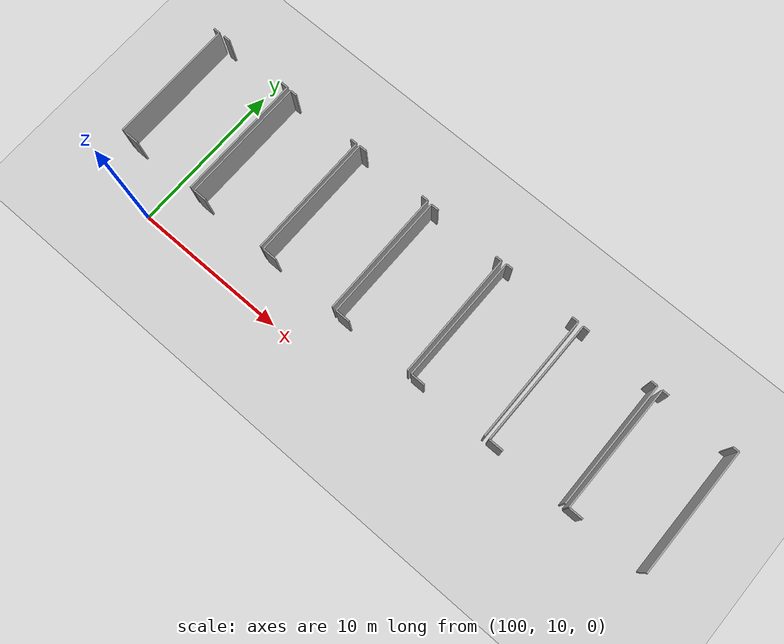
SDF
<sdf version="1.6">
 <world name="default">
  <model name="ground_plane">
   <static>1</static>
   <link name="link">
    <collision name="collision">
     <geometry><plane><normal>0 0 1</normal><size>100 100</size></plane></geometry>
     <surface><friction><ode><mu>100</mu><mu2>50</mu2></ode></friction></surface>
    </collision>
    <visual name="visual">
     <cast_shadows>0</cast_shadows>
     <geometry><plane><normal>0 0 1</normal><size>100 100</size></plane></geometry>
     <material>
      <script><uri>file://media/materials/scripts/gazebo.material</uri><name>Gazebo/Grey</name></script>
     </material>
    </visual>
   </link>
  </model>
  <model name="50037764_PLAN2">
   <static>1</static>
   <link name="Wall_492">
    <collision name="Wall_492_Collision">
     <geometry><box><size>0.440540952768 0.1 2.5</size></box></geometry>
     <pose>0.220270476384 0 1.25 0 0 0</pose>
    </collision>
    <visual name="Wall_492_Visual">
     <pose>0.220270476384 0 1.25 0 0 0</pose>
     <geometry><box><size>0.440540952768 0.1 2.5</size></box></geometry>
     <material>
      <script><uri>file://media/materials/scripts/gazebo.material</uri><name>Gazebo/Grey</name></script>
      <ambient>1 1 1 1</ambient>
     </material>
    </visual>
    <pose>231.542478011 -0.509939498704 0 0 0 0.0</pose>
   </link>
   <link name="Wall_493">
    <collision name="Wall_493_Collision">
     <geometry><box><size>8.1518296751 0.1 2.5</size></box></geometry>
     <pose>4.07591483755 0 1.25 0 0 0</pose>
    </collision>
    <visual name="Wall_493_Visual">
     <pose>4.07591483755 0 1.25 0 0 0</pose>
     <geometry><box><size>8.1518296751 0.1 2.5</size></box></geometry>
     <material>
      <script><uri>file://media/materials/scripts/gazebo.material</uri><name>Gazebo/Grey</name></script>
      <ambient>1 1 1 1</ambient>
     </material>
    </visual>
    <pose>231.983018964 -0.509939498704 0 0 0 -1.56671120386</pose>
   </link>
   <link name="Wall_494">
    <collision name="Wall_494_Collision">
     <geometry><box><size>0.87193044893 0.1 2.5</size></box></geometry>
     <pose>0.435965224465 0 1.25 0 0 0</pose>
    </collision>
    <visual name="Wall_494_Visual">
     <pose>0.435965224465 0 1.25 0 0 0</pose>
     <geometry><box><size>0.87193044893 0.1 2.5</size></box></geometry>
     <material>
      <script><uri>file://media/materials/scripts/gazebo.material</uri><name>Gazebo/Grey</name></script>
      <ambient>1 1 1 1</ambient>
     </material>
    </visual>
    <pose>233.188214958 -8.65743047435 0 0 0 3.14159265359</pose>
   </link>
   <link name="Wall_496">
    <collision name="Wall_496_Collision">
     <geometry><box><size>0.461131730134 0.1 2.5</size></box></geometry>
     <pose>0.230565865067 0 1.25 0 0 0</pose>
    </collision>
    <visual name="Wall_496_Visual">
     <pose>0.230565865067 0 1.25 0 0 0</pose>
     <geometry><box><size>0.461131730134 0.1 2.5</size></box></geometry>
     <material>
      <script><uri>file://media/materials/scripts/gazebo.material</uri><name>Gazebo/Grey</name></script>
      <ambient>1 1 1 1</ambient>
     </material>
    </visual>
    <pose>232.316284509 -0.49290762113 0 0 0 0.0</pose>
   </link>
   <link name="Wall_497">
    <collision name="Wall_497_Collision">
     <geometry><box><size>0.487569271442 0.1 2.5</size></box></geometry>
     <pose>0.243784635721 0 1.25 0 0 0</pose>
    </collision>
    <visual name="Wall_497_Visual">
     <pose>0.243784635721 0 1.25 0 0 0</pose>
     <geometry><box><size>0.487569271442 0.1 2.5</size></box></geometry>
     <material>
      <script><uri>file://media/materials/scripts/gazebo.material</uri><name>Gazebo/Grey</name></script>
      <ambient>1 1 1 1</ambient>
     </material>
    </visual>
    <pose>236.944887895 -0.49290762113 0 0 0 0.0</pose>
   </link>
   <link name="Wall_498">
    <collision name="Wall_498_Collision">
     <geometry><box><size>8.16452742802 0.1 2.5</size></box></geometry>
     <pose>4.08226371401 0 1.25 0 0 0</pose>
    </collision>
    <visual name="Wall_498_Visual">
     <pose>4.08226371401 0 1.25 0 0 0</pose>
     <geometry><box><size>8.16452742802 0.1 2.5</size></box></geometry>
     <material>
      <script><uri>file://media/materials/scripts/gazebo.material</uri><name>Gazebo/Grey</name></script>
      <ambient>1 1 1 1</ambient>
     </material>
    </visual>
    <pose>237.432457166 -0.49290762113 0 0 0 -1.56973771758</pose>
   </link>
   <link name="Wall_499">
    <collision name="Wall_499_Collision">
     <geometry><box><size>0.888962326504 0.1 2.5</size></box></geometry>
     <pose>0.444481163252 0 1.25 0 0 0</pose>
    </collision>
    <visual name="Wall_499_Visual">
     <pose>0.444481163252 0 1.25 0 0 0</pose>
     <geometry><box><size>0.888962326504 0.1 2.5</size></box></geometry>
     <material>
      <script><uri>file://media/materials/scripts/gazebo.material</uri><name>Gazebo/Grey</name></script>
      <ambient>1 1 1 1</ambient>
     </material>
    </visual>
    <pose>238.607910926 -8.64258477808 0 0 0 3.14159265359</pose>
   </link>
   <link name="Wall_500">
    <collision name="Wall_500_Collision">
     <geometry><box><size>8.1106563628 0.1 2.5</size></box></geometry>
     <pose>4.0553281814 0 1.25 0 0 0</pose>
    </collision>
    <visual name="Wall_500_Visual">
     <pose>4.0553281814 0 1.25 0 0 0</pose>
     <geometry><box><size>8.1106563628 0.1 2.5</size></box></geometry>
     <material>
      <script><uri>file://media/materials/scripts/gazebo.material</uri><name>Gazebo/Grey</name></script>
      <ambient>1 1 1 1</ambient>
     </material>
    </visual>
    <pose>237.718948599 -8.64258477808 0 0 0 1.57079632679</pose>
   </link>
   <link name="Wall_501">
    <collision name="Wall_501_Collision">
     <geometry><box><size>0.438761502873 0.1 2.5</size></box></geometry>
     <pose>0.219380751436 0 1.25 0 0 0</pose>
    </collision>
    <visual name="Wall_501_Visual">
     <pose>0.219380751436 0 1.25 0 0 0</pose>
     <geometry><box><size>0.438761502873 0.1 2.5</size></box></geometry>
     <material>
      <script><uri>file://media/materials/scripts/gazebo.material</uri><name>Gazebo/Grey</name></script>
      <ambient>1 1 1 1</ambient>
     </material>
    </visual>
    <pose>237.718948599 -0.531928415273 0 0 0 0.0</pose>
   </link>
   <link name="Wall_502">
    <collision name="Wall_502_Collision">
     <geometry><box><size>0.449183995119 0.1 2.5</size></box></geometry>
     <pose>0.22459199756 0 1.25 0 0 0</pose>
    </collision>
    <visual name="Wall_502_Visual">
     <pose>0.22459199756 0 1.25 0 0 0</pose>
     <geometry><box><size>0.449183995119 0.1 2.5</size></box></geometry>
     <material>
      <script><uri>file://media/materials/scripts/gazebo.material</uri><name>Gazebo/Grey</name></script>
      <ambient>1 1 1 1</ambient>
     </material>
    </visual>
    <pose>242.382632569 -0.531928415273 0 0 0 0.0</pose>
   </link>
   <link name="Wall_503">
    <collision name="Wall_503_Collision">
     <geometry><box><size>8.11065994816 0.1 2.5</size></box></geometry>
     <pose>4.05532997408 0 1.25 0 0 0</pose>
    </collision>
    <visual name="Wall_503_Visual">
     <pose>4.05532997408 0 1.25 0 0 0</pose>
     <geometry><box><size>8.11065994816 0.1 2.5</size></box></geometry>
     <material>
      <script><uri>file://media/materials/scripts/gazebo.material</uri><name>Gazebo/Grey</name></script>
      <ambient>1 1 1 1</ambient>
     </material>
    </visual>
    <pose>242.831816564 -0.531928415273 0 0 0 -1.56985605621</pose>
   </link>
   <link name="Wall_504">
    <collision name="Wall_504_Collision">
     <geometry><box><size>0.922771874523 0.1 2.5</size></box></geometry>
     <pose>0.461385937262 0 1.25 0 0 0</pose>
    </collision>
    <visual name="Wall_504_Visual">
     <pose>0.461385937262 0 1.25 0 0 0</pose>
     <geometry><box><size>0.922771874523 0.1 2.5</size></box></geometry>
     <material>
      <script><uri>file://media/materials/scripts/gazebo.material</uri><name>Gazebo/Grey</name></script>
      <ambient>1 1 1 1</ambient>
     </material>
    </visual>
    <pose>243.985154304 -8.64258477808 0 0 0 3.14159265359</pose>
   </link>
   <link name="Wall_505">
    <collision name="Wall_505_Collision">
     <geometry><box><size>8.13264527937 0.1 2.5</size></box></geometry>
     <pose>4.06632263969 0 1.25 0 0 0</pose>
    </collision>
    <visual name="Wall_505_Visual">
     <pose>4.06632263969 0 1.25 0 0 0</pose>
     <geometry><box><size>8.13264527937 0.1 2.5</size></box></geometry>
     <material>
      <script><uri>file://media/materials/scripts/gazebo.material</uri><name>Gazebo/Grey</name></script>
      <ambient>1 1 1 1</ambient>
     </material>
    </visual>
    <pose>243.062382429 -8.64258477808 0 0 0 1.57079632679</pose>
   </link>
   <link name="Wall_506">
    <collision name="Wall_506_Collision">
     <geometry><box><size>0.491382378362 0.1 2.5</size></box></geometry>
     <pose>0.245691189181 0 1.25 0 0 0</pose>
    </collision>
    <visual name="Wall_506_Visual">
     <pose>0.245691189181 0 1.25 0 0 0</pose>
     <geometry><box><size>0.491382378362 0.1 2.5</size></box></geometry>
     <material>
      <script><uri>file://media/materials/scripts/gazebo.material</uri><name>Gazebo/Grey</name></script>
      <ambient>1 1 1 1</ambient>
     </material>
    </visual>
    <pose>243.062382429 -0.509939498704 0 0 0 0.0</pose>
   </link>
   <link name="Wall_507">
    <collision name="Wall_507_Collision">
     <geometry><box><size>0.447404545223 0.1 2.5</size></box></geometry>
     <pose>0.223702272612 0 1.25 0 0 0</pose>
    </collision>
    <visual name="Wall_507_Visual">
     <pose>0.223702272612 0 1.25 0 0 0</pose>
     <geometry><box><size>0.447404545223 0.1 2.5</size></box></geometry>
     <material>
      <script><uri>file://media/materials/scripts/gazebo.material</uri><name>Gazebo/Grey</name></script>
      <ambient>1 1 1 1</ambient>
     </material>
    </visual>
    <pose>247.747928212 -0.509939498704 0 0 0 0.0</pose>
   </link>
   <link name="Wall_508">
    <collision name="Wall_508_Collision">
     <geometry><box><size>8.13266474683 0.1 2.5</size></box></geometry>
     <pose>4.06633237341 0 1.25 0 0 0</pose>
    </collision>
    <visual name="Wall_508_Visual">
     <pose>4.06633237341 0 1.25 0 0 0</pose>
     <geometry><box><size>8.13266474683 0.1 2.5</size></box></geometry>
     <material>
      <script><uri>file://media/materials/scripts/gazebo.material</uri><name>Gazebo/Grey</name></script>
      <ambient>1 1 1 1</ambient>
     </material>
    </visual>
    <pose>248.195332757 -0.509939498704 0 0 0 -1.56860829695</pose>
   </link>
   <link name="Wall_509">
    <collision name="Wall_509_Collision">
     <geometry><box><size>0.94565051604 0.1 2.5</size></box></geometry>
     <pose>0.47282525802 0 1.25 0 0 0</pose>
    </collision>
    <visual name="Wall_509_Visual">
     <pose>0.47282525802 0 1.25 0 0 0</pose>
     <geometry><box><size>0.94565051604 0.1 2.5</size></box></geometry>
     <material>
      <script><uri>file://media/materials/scripts/gazebo.material</uri><name>Gazebo/Grey</name></script>
      <ambient>1 1 1 1</ambient>
     </material>
    </visual>
    <pose>249.438405613 -8.64100869388 0 0 0 3.14159265359</pose>
   </link>
   <link name="Wall_510">
    <collision name="Wall_510_Collision">
     <geometry><box><size>8.08490518074 0.1 2.5</size></box></geometry>
     <pose>4.04245259037 0 1.25 0 0 0</pose>
    </collision>
    <visual name="Wall_510_Visual">
     <pose>4.04245259037 0 1.25 0 0 0</pose>
     <geometry><box><size>8.08490518074 0.1 2.5</size></box></geometry>
     <material>
      <script><uri>file://media/materials/scripts/gazebo.material</uri><name>Gazebo/Grey</name></script>
      <ambient>1 1 1 1</ambient>
     </material>
    </visual>
    <pose>248.492755097 -8.64100869388 0 0 0 1.57079632679</pose>
   </link>
   <link name="Wall_511">
    <collision name="Wall_511_Collision">
     <geometry><box><size>0.500788042097 0.1 2.5</size></box></geometry>
     <pose>0.250394021048 0 1.25 0 0 0</pose>
    </collision>
    <visual name="Wall_511_Visual">
     <pose>0.250394021048 0 1.25 0 0 0</pose>
     <geometry><box><size>0.500788042097 0.1 2.5</size></box></geometry>
     <material>
      <script><uri>file://media/materials/scripts/gazebo.material</uri><name>Gazebo/Grey</name></script>
      <ambient>1 1 1 1</ambient>
     </material>
    </visual>
    <pose>248.492755097 -0.556103513143 0 0 0 0.0</pose>
   </link>
   <link name="Wall_512">
    <collision name="Wall_512_Collision">
     <geometry><box><size>0.424525903706 0.1 2.5</size></box></geometry>
     <pose>0.212262951853 0 1.25 0 0 0</pose>
    </collision>
    <visual name="Wall_512_Visual">
     <pose>0.212262951853 0 1.25 0 0 0</pose>
     <geometry><box><size>0.424525903706 0.1 2.5</size></box></geometry>
     <material>
      <script><uri>file://media/materials/scripts/gazebo.material</uri><name>Gazebo/Grey</name></script>
      <ambient>1 1 1 1</ambient>
     </material>
    </visual>
    <pose>253.190502822 -0.556103513143 0 0 0 0.0</pose>
   </link>
   <link name="Wall_513">
    <collision name="Wall_513_Collision">
     <geometry><box><size>8.08499509957 0.1 2.5</size></box></geometry>
     <pose>4.04249754978 0 1.25 0 0 0</pose>
    </collision>
    <visual name="Wall_513_Visual">
     <pose>4.04249754978 0 1.25 0 0 0</pose>
     <geometry><box><size>8.08499509957 0.1 2.5</size></box></geometry>
     <material>
      <script><uri>file://media/materials/scripts/gazebo.material</uri><name>Gazebo/Grey</name></script>
      <ambient>1 1 1 1</ambient>
     </material>
    </visual>
    <pose>253.615028725 -0.556103513143 0 0 0 -1.56608003321</pose>
   </link>
   <link name="Wall_514">
    <collision name="Wall_514_Collision">
     <geometry><box><size>0.927856017083 0.1 2.5</size></box></geometry>
     <pose>0.463928008541 0 1.25 0 0 0</pose>
    </collision>
    <visual name="Wall_514_Visual">
     <pose>0.463928008541 0 1.25 0 0 0</pose>
     <geometry><box><size>0.927856017083 0.1 2.5</size></box></geometry>
     <material>
      <script><uri>file://media/materials/scripts/gazebo.material</uri><name>Gazebo/Grey</name></script>
      <ambient>1 1 1 1</ambient>
     </material>
    </visual>
    <pose>254.850475367 -8.63216228583 0 0 0 3.14159265359</pose>
   </link>
   <link name="Wall_515">
    <collision name="Wall_515_Collision">
     <geometry><box><size>8.1112410392 0.1 2.5</size></box></geometry>
     <pose>4.0556205196 0 1.25 0 0 0</pose>
    </collision>
    <visual name="Wall_515_Visual">
     <pose>4.0556205196 0 1.25 0 0 0</pose>
     <geometry><box><size>8.1112410392 0.1 2.5</size></box></geometry>
     <material>
      <script><uri>file://media/materials/scripts/gazebo.material</uri><name>Gazebo/Grey</name></script>
      <ambient>1 1 1 1</ambient>
     </material>
    </visual>
    <pose>253.92261935 -8.63216228583 0 0 0 1.57079632679</pose>
   </link>
   <link name="Wall_516">
    <collision name="Wall_516_Collision">
     <geometry><box><size>0.444862473944 0.1 2.5</size></box></geometry>
     <pose>0.222431236972 0 1.25 0 0 0</pose>
    </collision>
    <visual name="Wall_516_Visual">
     <pose>0.222431236972 0 1.25 0 0 0</pose>
     <geometry><box><size>0.444862473944 0.1 2.5</size></box></geometry>
     <material>
      <script><uri>file://media/materials/scripts/gazebo.material</uri><name>Gazebo/Grey</name></script>
      <ambient>1 1 1 1</ambient>
     </material>
    </visual>
    <pose>253.92261935 -0.520921246632 0 0 0 0.0</pose>
   </link>
   <link name="Wall_517">
    <collision name="Wall_517_Collision">
     <geometry><box><size>0.432152117545 0.1 2.5</size></box></geometry>
     <pose>0.216076058773 0 1.25 0 0 0</pose>
    </collision>
    <visual name="Wall_517_Visual">
     <pose>0.216076058773 0 1.25 0 0 0</pose>
     <geometry><box><size>0.432152117545 0.1 2.5</size></box></geometry>
     <material>
      <script><uri>file://media/materials/scripts/gazebo.material</uri><name>Gazebo/Grey</name></script>
      <ambient>1 1 1 1</ambient>
     </material>
    </visual>
    <pose>258.566983578 -0.520921246632 0 0 0 0.0</pose>
   </link>
   <link name="Wall_518">
    <collision name="Wall_518_Collision">
     <geometry><box><size>8.11134301459 0.1 2.5</size></box></geometry>
     <pose>4.05567150729 0 1.25 0 0 0</pose>
    </collision>
    <visual name="Wall_518_Visual">
     <pose>4.05567150729 0 1.25 0 0 0</pose>
     <geometry><box><size>8.11134301459 0.1 2.5</size></box></geometry>
     <material>
      <script><uri>file://media/materials/scripts/gazebo.material</uri><name>Gazebo/Grey</name></script>
      <ambient>1 1 1 1</ambient>
     </material>
    </visual>
    <pose>258.999135696 -0.520921246632 0 0 0 -1.56578195238</pose>
   </link>
   <link name="Wall_519">
    <collision name="Wall_519_Collision">
     <geometry><box><size>0.935482230922 0.1 2.5</size></box></geometry>
     <pose>0.467741115461 0 1.25 0 0 0</pose>
    </collision>
    <visual name="Wall_519_Visual">
     <pose>0.467741115461 0 1.25 0 0 0</pose>
     <geometry><box><size>0.935482230922 0.1 2.5</size></box></geometry>
     <material>
      <script><uri>file://media/materials/scripts/gazebo.material</uri><name>Gazebo/Grey</name></script>
      <ambient>1 1 1 1</ambient>
     </material>
    </visual>
    <pose>260.287965835 -8.60961411358 0 0 0 3.14159265359</pose>
   </link>
   <link name="Wall_520">
    <collision name="Wall_520_Collision">
     <geometry><box><size>8.06670395038 0.1 2.5</size></box></geometry>
     <pose>4.03335197519 0 1.25 0 0 0</pose>
    </collision>
    <visual name="Wall_520_Visual">
     <pose>4.03335197519 0 1.25 0 0 0</pose>
     <geometry><box><size>8.06670395038 0.1 2.5</size></box></geometry>
     <material>
      <script><uri>file://media/materials/scripts/gazebo.material</uri><name>Gazebo/Grey</name></script>
      <ambient>1 1 1 1</ambient>
     </material>
    </visual>
    <pose>259.352483604 -8.60961411358 0 0 0 1.57079632679</pose>
   </link>
   <link name="Wall_521">
    <collision name="Wall_521_Collision">
     <geometry><box><size>0.444862473944 0.1 2.5</size></box></geometry>
     <pose>0.222431236972 0 1.25 0 0 0</pose>
    </collision>
    <visual name="Wall_521_Visual">
     <pose>0.222431236972 0 1.25 0 0 0</pose>
     <geometry><box><size>0.444862473944 0.1 2.5</size></box></geometry>
     <material>
      <script><uri>file://media/materials/scripts/gazebo.material</uri><name>Gazebo/Grey</name></script>
      <ambient>1 1 1 1</ambient>
     </material>
    </visual>
    <pose>259.352483604 -0.542910163201 0 0 0 0.0</pose>
   </link>
   <link name="Wall_522">
    <collision name="Wall_522_Collision">
     <geometry><box><size>0.424525903706 0.1 2.5</size></box></geometry>
     <pose>0.212262951853 0 1.25 0 0 0</pose>
    </collision>
    <visual name="Wall_522_Visual">
     <pose>0.212262951853 0 1.25 0 0 0</pose>
     <geometry><box><size>0.424525903706 0.1 2.5</size></box></geometry>
     <material>
      <script><uri>file://media/materials/scripts/gazebo.material</uri><name>Gazebo/Grey</name></script>
      <ambient>1 1 1 1</ambient>
     </material>
    </visual>
    <pose>264.001931974 -0.542910163201 0 0 0 0.0</pose>
   </link>
   <link name="Wall_523">
    <collision name="Wall_523_Collision">
     <geometry><box><size>8.06688058798 0.1 2.5</size></box></geometry>
     <pose>4.03344029399 0 1.25 0 0 0</pose>
    </collision>
    <visual name="Wall_523_Visual">
     <pose>4.03344029399 0 1.25 0 0 0</pose>
     <geometry><box><size>8.06688058798 0.1 2.5</size></box></geometry>
     <material>
      <script><uri>file://media/materials/scripts/gazebo.material</uri><name>Gazebo/Grey</name></script>
      <ambient>1 1 1 1</ambient>
     </material>
    </visual>
    <pose>264.426457878 -0.542910163201 0 0 0 -1.56417866512</pose>
   </link>
   <link name="Wall_524">
    <collision name="Wall_524_Collision">
     <geometry><box><size>0.912603589405 0.1 2.5</size></box></geometry>
     <pose>0.456301794702 0 1.25 0 0 0</pose>
    </collision>
    <visual name="Wall_524_Visual">
     <pose>0.456301794702 0 1.25 0 0 0</pose>
     <geometry><box><size>0.912603589405 0.1 2.5</size></box></geometry>
     <material>
      <script><uri>file://media/materials/scripts/gazebo.material</uri><name>Gazebo/Grey</name></script>
      <ambient>1 1 1 1</ambient>
     </material>
    </visual>
    <pose>265.666988662 -8.64258477808 0 0 0 3.14159265359</pose>
   </link>
   <link name="Wall_525">
    <collision name="Wall_525_Collision">
     <geometry><box><size>8.09006558544 0.1 2.5</size></box></geometry>
     <pose>4.04503279272 0 1.25 0 0 0</pose>
    </collision>
    <visual name="Wall_525_Visual">
     <pose>4.04503279272 0 1.25 0 0 0</pose>
     <geometry><box><size>8.09006558544 0.1 2.5</size></box></geometry>
     <material>
      <script><uri>file://media/materials/scripts/gazebo.material</uri><name>Gazebo/Grey</name></script>
      <ambient>1 1 1 1</ambient>
     </material>
    </visual>
    <pose>264.754385073 -8.64258477808 0 0 0 1.57079632679</pose>
   </link>
   <link name="Wall_526">
    <collision name="Wall_526_Collision">
     <geometry><box><size>0.457572830342 0.1 2.5</size></box></geometry>
     <pose>0.228786415171 0 1.25 0 0 0</pose>
    </collision>
    <visual name="Wall_526_Visual">
     <pose>0.228786415171 0 1.25 0 0 0</pose>
     <geometry><box><size>0.457572830342 0.1 2.5</size></box></geometry>
     <material>
      <script><uri>file://media/materials/scripts/gazebo.material</uri><name>Gazebo/Grey</name></script>
      <ambient>1 1 1 1</ambient>
     </material>
    </visual>
    <pose>264.754385073 -0.552519192638 0 0 0 0.0</pose>
   </link>
   <link name="Wall_527">
    <collision name="Wall_527_Collision">
     <geometry><box><size>0.391478977071 0.1 2.5</size></box></geometry>
     <pose>0.195739488535 0 1.25 0 0 0</pose>
    </collision>
    <visual name="Wall_527_Visual">
     <pose>0.195739488535 0 1.25 0 0 0</pose>
     <geometry><box><size>0.391478977071 0.1 2.5</size></box></geometry>
     <material>
      <script><uri>file://media/materials/scripts/gazebo.material</uri><name>Gazebo/Grey</name></script>
      <ambient>1 1 1 1</ambient>
     </material>
    </visual>
    <pose>269.411459657 -0.552519192638 0 0 0 0.0</pose>
   </link>
   <link name="Wall_528">
    <collision name="Wall_528_Collision">
     <geometry><box><size>8.09008515536 0.1 2.5</size></box></geometry>
     <pose>4.04504257768 0 1.25 0 0 0</pose>
    </collision>
    <visual name="Wall_528_Visual">
     <pose>4.04504257768 0 1.25 0 0 0</pose>
     <geometry><box><size>8.09008515536 0.1 2.5</size></box></geometry>
     <material>
      <script><uri>file://media/materials/scripts/gazebo.material</uri><name>Gazebo/Grey</name></script>
      <ambient>1 1 1 1</ambient>
     </material>
    </visual>
    <pose>269.802938634 -0.552519192638 0 0 0 -1.56859678094</pose>
   </link>
   <pose>-135.8 21.3069729015 0 0 0 0</pose>
  </model>
 </world>
</sdf>
